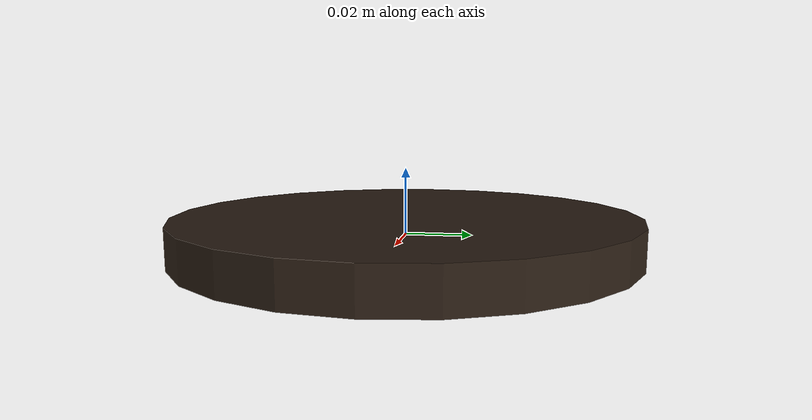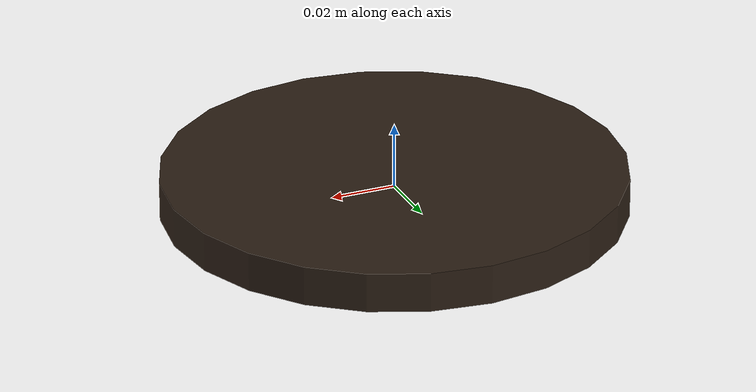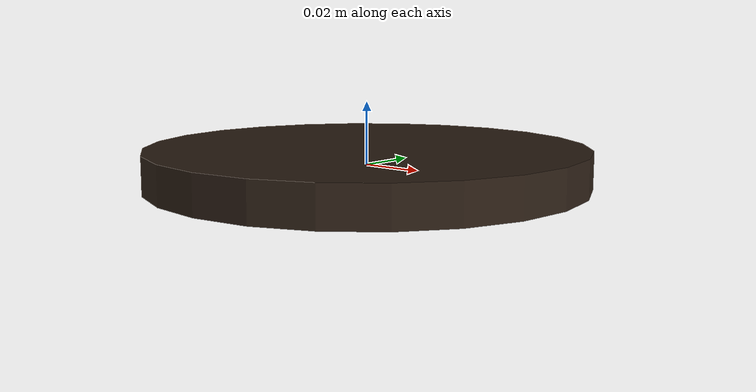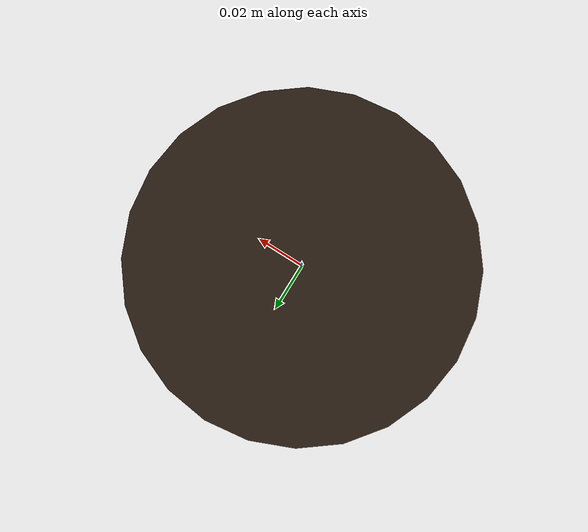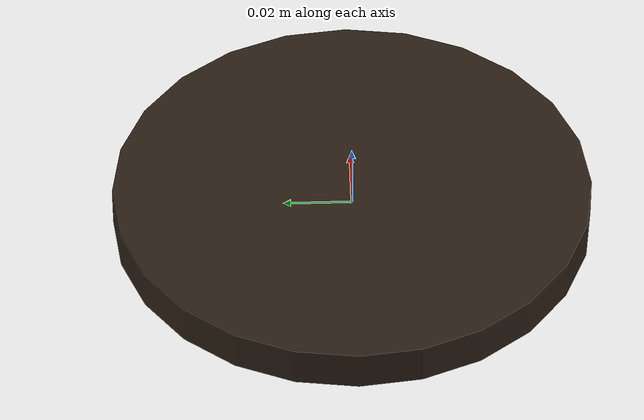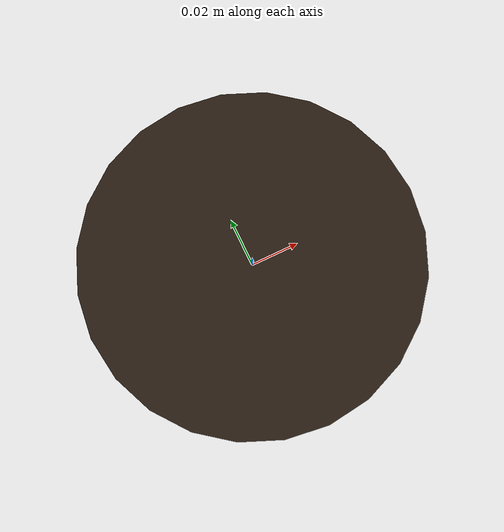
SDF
<?xml version="1.0"?>
<!-- Planting hole: a small dark soil-coloured disc set in the mulch at each
     plant's base (primitive cylinder, inline colour -> cheap, no mesh). -->
<sdf version="1.6">
  <model name="mulch_hole">
    <static>true</static>
    <link name="link">
      <visual name="visual">
        <geometry><cylinder><radius>0.07</radius><length>0.012</length></cylinder></geometry>
        <material>
          <ambient>0.10 0.07 0.05 1</ambient>
          <diffuse>0.17 0.12 0.08 1</diffuse>
          <specular>0 0 0 1</specular>
        </material>
      </visual>
    </link>
  </model>
</sdf>
